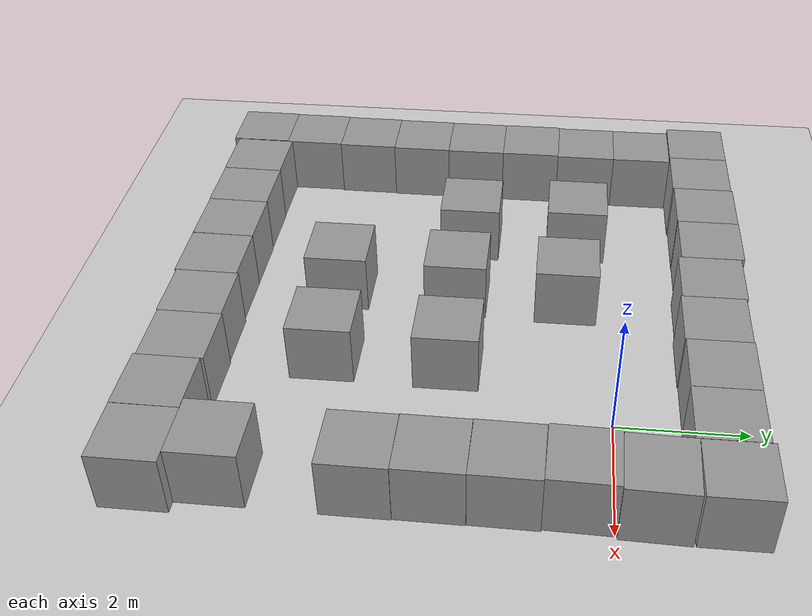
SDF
<sdf version="1.6">
 <world name="default">
  <light name="sun" type="directional">
   <pose>0 0 10 0 -0 0</pose>
   <diffuse>0.8 0.8 0.8 1</diffuse>
   <specular>0.1 0.1 0.1 1</specular>
   <attenuation>
    <range>1000</range>
    <constant>0.9</constant>
    <linear>0.01</linear>
    <quadratic>0.001</quadratic>
   </attenuation>
   <direction>-0.5 0.5 -1</direction>
  </light>
  <model name="ground_plane">
   <static>1</static>
   <link name="link">
    <collision name="collision">
     <geometry><plane><normal>0 0 1</normal><size>100 100</size></plane></geometry>
     <surface><friction><ode><mu>100</mu><mu2>50</mu2></ode></friction></surface>
    </collision>
    <visual name="visual">
     <cast_shadows>0</cast_shadows>
     <geometry><plane><normal>0 0 1</normal><size>100 100</size></plane></geometry>
     <material>
      <script><uri>file://media/materials/scripts/gazebo.material</uri><name>Gazebo/Grey</name></script>
     </material>
    </visual>
   </link>
  </model>
  <gravity>0 0 -9.8</gravity>
  <magnetic_field>6e-06 2.3e-05 -4.2e-05</magnetic_field>
  <atmosphere type="adiabatic"/>
  <physics name="default_physics" default="0" type="ode">
   <max_step_size>0.001</max_step_size>
   <real_time_factor>1</real_time_factor>
   <real_time_update_rate>1000</real_time_update_rate>
  </physics>
  <scene><ambient>0.4 0.4 0.4 1</ambient><background>0.7 0.7 0.7 1</background><shadows>1</shadows></scene>
  <spherical_coordinates>
   <surface_model>EARTH_WGS84</surface_model>
   <latitude_deg>0</latitude_deg>
   <longitude_deg>0</longitude_deg>
   <elevation>0</elevation>
   <heading_deg>0</heading_deg>
  </spherical_coordinates>
  <model name="unit_box_0_10">
   <pose>-0.421887 1.49598 0.5 0 -0 0.000849</pose>
   <link name="link">
    <inertial>
     <mass>1</mass>
     <inertia>
      <ixx>0.166667</ixx>
      <ixy>0</ixy>
      <ixz>0</ixz>
      <iyy>0.166667</iyy>
      <iyz>0</iyz>
      <izz>0.166667</izz>
     </inertia>
    </inertial>
    <collision name="collision"><geometry><box><size>1 1 1</size></box></geometry></collision>
    <visual name="visual">
     <geometry><box><size>1 1 1</size></box></geometry>
     <material>
      <script><name>Gazebo/Grey</name><uri>file://media/materials/scripts/gazebo.material</uri></script>
     </material>
    </visual>
   </link>
  </model>
  <model name="unit_box_0_11">
   <pose>-1.42188 1.48094 0.499995 0 1e-05 0.000861</pose>
   <link name="link">
    <inertial>
     <mass>1</mass>
     <inertia>
      <ixx>0.166667</ixx>
      <ixy>0</ixy>
      <ixz>0</ixz>
      <iyy>0.166667</iyy>
      <iyz>0</iyz>
      <izz>0.166667</izz>
     </inertia>
    </inertial>
    <collision name="collision"><geometry><box><size>1 1 1</size></box></geometry></collision>
    <visual name="visual">
     <geometry><box><size>1 1 1</size></box></geometry>
     <material>
      <script><name>Gazebo/Grey</name><uri>file://media/materials/scripts/gazebo.material</uri></script>
     </material>
    </visual>
   </link>
  </model>
  <model name="unit_box_0_12">
   <pose>0.578482 1.49486 0.499995 0 1e-05 0.000904</pose>
   <link name="link">
    <inertial>
     <mass>1</mass>
     <inertia>
      <ixx>0.166667</ixx>
      <ixy>0</ixy>
      <ixz>0</ixz>
      <iyy>0.166667</iyy>
      <iyz>0</iyz>
      <izz>0.166667</izz>
     </inertia>
    </inertial>
    <collision name="collision"><geometry><box><size>1 1 1</size></box></geometry></collision>
    <visual name="visual">
     <geometry><box><size>1 1 1</size></box></geometry>
     <material>
      <script><name>Gazebo/Grey</name><uri>file://media/materials/scripts/gazebo.material</uri></script>
     </material>
    </visual>
   </link>
  </model>
  <model name="unit_box_0_13">
   <pose>1.58058 1.55397 0.499995 0 1e-05 7.7e-05</pose>
   <link name="link">
    <inertial>
     <mass>1</mass>
     <inertia>
      <ixx>0.166667</ixx>
      <ixy>0</ixy>
      <ixz>0</ixz>
      <iyy>0.166667</iyy>
      <iyz>0</iyz>
      <izz>0.166667</izz>
     </inertia>
    </inertial>
    <collision name="collision"><geometry><box><size>1 1 1</size></box></geometry></collision>
    <visual name="visual">
     <geometry><box><size>1 1 1</size></box></geometry>
     <material>
      <script><name>Gazebo/Grey</name><uri>file://media/materials/scripts/gazebo.material</uri></script>
     </material>
    </visual>
   </link>
  </model>
  <model name="unit_box_0_14">
   <pose>1.56771 0.539841 0.499995 0 -1e-05 -0.028566</pose>
   <link name="link">
    <inertial>
     <mass>1</mass>
     <inertia>
      <ixx>0.166667</ixx>
      <ixy>0</ixy>
      <ixz>0</ixz>
      <iyy>0.166667</iyy>
      <iyz>0</iyz>
      <izz>0.166667</izz>
     </inertia>
    </inertial>
    <collision name="collision"><geometry><box><size>1 1 1</size></box></geometry></collision>
    <visual name="visual">
     <geometry><box><size>1 1 1</size></box></geometry>
     <material>
      <script><name>Gazebo/Grey</name><uri>file://media/materials/scripts/gazebo.material</uri></script>
     </material>
    </visual>
   </link>
  </model>
  <model name="unit_box_0_15">
   <pose>1.5008 -0.460723 0.5 0 0 -0.024448</pose>
   <link name="link">
    <inertial>
     <mass>1</mass>
     <inertia>
      <ixx>0.166667</ixx>
      <ixy>0</ixy>
      <ixz>0</ixz>
      <iyy>0.166667</iyy>
      <iyz>0</iyz>
      <izz>0.166667</izz>
     </inertia>
    </inertial>
    <collision name="collision"><geometry><box><size>1 1 1</size></box></geometry></collision>
    <visual name="visual">
     <geometry><box><size>1 1 1</size></box></geometry>
     <material>
      <script><name>Gazebo/Grey</name><uri>file://media/materials/scripts/gazebo.material</uri></script>
     </material>
    </visual>
   </link>
  </model>
  <model name="unit_box_0_16">
   <pose>1.50783 -1.46626 0.5 0 0 -0.013703</pose>
   <link name="link">
    <inertial>
     <mass>1</mass>
     <inertia>
      <ixx>0.166667</ixx>
      <ixy>0</ixy>
      <ixz>0</ixz>
      <iyy>0.166667</iyy>
      <iyz>0</iyz>
      <izz>0.166667</izz>
     </inertia>
    </inertial>
    <collision name="collision"><geometry><box><size>1 1 1</size></box></geometry></collision>
    <visual name="visual">
     <geometry><box><size>1 1 1</size></box></geometry>
     <material>
      <script><name>Gazebo/Grey</name><uri>file://media/materials/scripts/gazebo.material</uri></script>
     </material>
    </visual>
   </link>
  </model>
  <model name="unit_box_0_17">
   <pose>1.50395 -2.46873 0.5 0 0 -0.008767</pose>
   <link name="link">
    <inertial>
     <mass>1</mass>
     <inertia>
      <ixx>0.166667</ixx>
      <ixy>0</ixy>
      <ixz>0</ixz>
      <iyy>0.166667</iyy>
      <iyz>0</iyz>
      <izz>0.166667</izz>
     </inertia>
    </inertial>
    <collision name="collision"><geometry><box><size>1 1 1</size></box></geometry></collision>
    <visual name="visual">
     <geometry><box><size>1 1 1</size></box></geometry>
     <material>
      <script><name>Gazebo/Grey</name><uri>file://media/materials/scripts/gazebo.material</uri></script>
     </material>
    </visual>
   </link>
  </model>
  <model name="unit_box_0_18">
   <pose>1.50599 -3.46984 0.499995 -1e-05 0 -0.006664</pose>
   <link name="link">
    <inertial>
     <mass>1</mass>
     <inertia>
      <ixx>0.166667</ixx>
      <ixy>0</ixy>
      <ixz>0</ixz>
      <iyy>0.166667</iyy>
      <iyz>0</iyz>
      <izz>0.166667</izz>
     </inertia>
    </inertial>
    <collision name="collision"><geometry><box><size>1 1 1</size></box></geometry></collision>
    <visual name="visual">
     <geometry><box><size>1 1 1</size></box></geometry>
     <material>
      <script><name>Gazebo/Grey</name><uri>file://media/materials/scripts/gazebo.material</uri></script>
     </material>
    </visual>
   </link>
  </model>
  <model name="unit_box_0_30">
   <pose>1.48426 -5.46986 0.5 0 0 -0.006967</pose>
   <link name="link">
    <inertial>
     <mass>1</mass>
     <inertia>
      <ixx>0.166667</ixx>
      <ixy>0</ixy>
      <ixz>0</ixz>
      <iyy>0.166667</iyy>
      <iyz>0</iyz>
      <izz>0.166667</izz>
     </inertia>
    </inertial>
    <collision name="collision"><geometry><box><size>1 1 1</size></box></geometry></collision>
    <visual name="visual">
     <geometry><box><size>1 1 1</size></box></geometry>
     <material>
      <script><name>Gazebo/Grey</name><uri>file://media/materials/scripts/gazebo.material</uri></script>
     </material>
    </visual>
   </link>
  </model>
  <model name="unit_box_0_31">
   <pose>1.66083 -6.47112 0.499995 -0 -1e-05 -0.006969</pose>
   <link name="link">
    <inertial>
     <mass>1</mass>
     <inertia>
      <ixx>0.166667</ixx>
      <ixy>0</ixy>
      <ixz>0</ixz>
      <iyy>0.166667</iyy>
      <iyz>0</iyz>
      <izz>0.166667</izz>
     </inertia>
    </inertial>
    <collision name="collision"><geometry><box><size>1 1 1</size></box></geometry></collision>
    <visual name="visual">
     <geometry><box><size>1 1 1</size></box></geometry>
     <material>
      <script><name>Gazebo/Grey</name><uri>file://media/materials/scripts/gazebo.material</uri></script>
     </material>
    </visual>
   </link>
  </model>
  <model name="unit_box_0_32">
   <pose>0.658483 -6.46631 0.5 0 0 -0.01169</pose>
   <link name="link">
    <inertial>
     <mass>1</mass>
     <inertia>
      <ixx>0.166667</ixx>
      <ixy>0</ixy>
      <ixz>0</ixz>
      <iyy>0.166667</iyy>
      <iyz>0</iyz>
      <izz>0.166667</izz>
     </inertia>
    </inertial>
    <collision name="collision"><geometry><box><size>1 1 1</size></box></geometry></collision>
    <visual name="visual">
     <geometry><box><size>1 1 1</size></box></geometry>
     <material>
      <script><name>Gazebo/Grey</name><uri>file://media/materials/scripts/gazebo.material</uri></script>
     </material>
    </visual>
   </link>
  </model>
  <model name="unit_box_0_33">
   <pose>-0.340964 -6.41077 0.499995 1e-05 0 -0.011749</pose>
   <link name="link">
    <inertial>
     <mass>1</mass>
     <inertia>
      <ixx>0.166667</ixx>
      <ixy>0</ixy>
      <ixz>0</ixz>
      <iyy>0.166667</iyy>
      <iyz>0</iyz>
      <izz>0.166667</izz>
     </inertia>
    </inertial>
    <collision name="collision"><geometry><box><size>1 1 1</size></box></geometry></collision>
    <visual name="visual">
     <geometry><box><size>1 1 1</size></box></geometry>
     <material>
      <script><name>Gazebo/Grey</name><uri>file://media/materials/scripts/gazebo.material</uri></script>
     </material>
    </visual>
   </link>
  </model>
  <model name="unit_box_0_34">
   <pose>-1.34112 -6.41668 0.5 0 0 -0.011778</pose>
   <link name="link">
    <inertial>
     <mass>1</mass>
     <inertia>
      <ixx>0.166667</ixx>
      <ixy>0</ixy>
      <ixz>0</ixz>
      <iyy>0.166667</iyy>
      <iyz>0</iyz>
      <izz>0.166667</izz>
     </inertia>
    </inertial>
    <collision name="collision"><geometry><box><size>1 1 1</size></box></geometry></collision>
    <visual name="visual">
     <geometry><box><size>1 1 1</size></box></geometry>
     <material>
      <script><name>Gazebo/Grey</name><uri>file://media/materials/scripts/gazebo.material</uri></script>
     </material>
    </visual>
   </link>
  </model>
  <model name="unit_box_0_35">
   <pose>-2.34187 -6.43251 0.499995 1e-05 0 -0.012736</pose>
   <link name="link">
    <inertial>
     <mass>1</mass>
     <inertia>
      <ixx>0.166667</ixx>
      <ixy>0</ixy>
      <ixz>0</ixz>
      <iyy>0.166667</iyy>
      <iyz>0</iyz>
      <izz>0.166667</izz>
     </inertia>
    </inertial>
    <collision name="collision"><geometry><box><size>1 1 1</size></box></geometry></collision>
    <visual name="visual">
     <geometry><box><size>1 1 1</size></box></geometry>
     <material>
      <script><name>Gazebo/Grey</name><uri>file://media/materials/scripts/gazebo.material</uri></script>
     </material>
    </visual>
   </link>
  </model>
  <model name="unit_box_0_36">
   <pose>-3.3432 -6.42124 0.5 0 0 -0.015513</pose>
   <link name="link">
    <inertial>
     <mass>1</mass>
     <inertia>
      <ixx>0.166667</ixx>
      <ixy>0</ixy>
      <ixz>0</ixz>
      <iyy>0.166667</iyy>
      <iyz>0</iyz>
      <izz>0.166667</izz>
     </inertia>
    </inertial>
    <collision name="collision"><geometry><box><size>1 1 1</size></box></geometry></collision>
    <visual name="visual">
     <geometry><box><size>1 1 1</size></box></geometry>
     <material>
      <script><name>Gazebo/Grey</name><uri>file://media/materials/scripts/gazebo.material</uri></script>
     </material>
    </visual>
   </link>
  </model>
  <model name="unit_box_0_38">
   <pose>-4.34325 -6.41689 0.5 0 0 -0.015518</pose>
   <link name="link">
    <inertial>
     <mass>1</mass>
     <inertia>
      <ixx>0.166667</ixx>
      <ixy>0</ixy>
      <ixz>0</ixz>
      <iyy>0.166667</iyy>
      <iyz>0</iyz>
      <izz>0.166667</izz>
     </inertia>
    </inertial>
    <collision name="collision"><geometry><box><size>1 1 1</size></box></geometry></collision>
    <visual name="visual">
     <geometry><box><size>1 1 1</size></box></geometry>
     <material>
      <script><name>Gazebo/Grey</name><uri>file://media/materials/scripts/gazebo.material</uri></script>
     </material>
    </visual>
   </link>
  </model>
  <model name="unit_box_0_39">
   <pose>-5.34328 -6.41024 0.499995 0 1e-05 -0.015526</pose>
   <link name="link">
    <inertial>
     <mass>1</mass>
     <inertia>
      <ixx>0.166667</ixx>
      <ixy>0</ixy>
      <ixz>0</ixz>
      <iyy>0.166667</iyy>
      <iyz>0</iyz>
      <izz>0.166667</izz>
     </inertia>
    </inertial>
    <collision name="collision"><geometry><box><size>1 1 1</size></box></geometry></collision>
    <visual name="visual">
     <geometry><box><size>1 1 1</size></box></geometry>
     <material>
      <script><name>Gazebo/Grey</name><uri>file://media/materials/scripts/gazebo.material</uri></script>
     </material>
    </visual>
   </link>
  </model>
  <model name="unit_box_0_40">
   <pose>-6.35595 -6.48989 0.499995 -1e-05 -0 -0.002435</pose>
   <link name="link">
    <inertial>
     <mass>1</mass>
     <inertia>
      <ixx>0.166667</ixx>
      <ixy>0</ixy>
      <ixz>0</ixz>
      <iyy>0.166667</iyy>
      <iyz>0</iyz>
      <izz>0.166667</izz>
     </inertia>
    </inertial>
    <collision name="collision"><geometry><box><size>1 1 1</size></box></geometry></collision>
    <visual name="visual">
     <geometry><box><size>1 1 1</size></box></geometry>
     <material>
      <script><name>Gazebo/Grey</name><uri>file://media/materials/scripts/gazebo.material</uri></script>
     </material>
    </visual>
   </link>
  </model>
  <model name="unit_box_0_41">
   <pose>-6.33563 -5.48992 0.5 0 0 -0.002417</pose>
   <link name="link">
    <inertial>
     <mass>1</mass>
     <inertia>
      <ixx>0.166667</ixx>
      <ixy>0</ixy>
      <ixz>0</ixz>
      <iyy>0.166667</iyy>
      <iyz>0</iyz>
      <izz>0.166667</izz>
     </inertia>
    </inertial>
    <collision name="collision"><geometry><box><size>1 1 1</size></box></geometry></collision>
    <visual name="visual">
     <geometry><box><size>1 1 1</size></box></geometry>
     <material>
      <script><name>Gazebo/Grey</name><uri>file://media/materials/scripts/gazebo.material</uri></script>
     </material>
    </visual>
   </link>
  </model>
  <model name="unit_box_0_42">
   <pose>-6.31365 -4.48967 0.499995 0 1e-05 -0.001812</pose>
   <link name="link">
    <inertial>
     <mass>1</mass>
     <inertia>
      <ixx>0.166667</ixx>
      <ixy>0</ixy>
      <ixz>0</ixz>
      <iyy>0.166667</iyy>
      <iyz>0</iyz>
      <izz>0.166667</izz>
     </inertia>
    </inertial>
    <collision name="collision"><geometry><box><size>1 1 1</size></box></geometry></collision>
    <visual name="visual">
     <geometry><box><size>1 1 1</size></box></geometry>
     <material>
      <script><name>Gazebo/Grey</name><uri>file://media/materials/scripts/gazebo.material</uri></script>
     </material>
    </visual>
   </link>
  </model>
  <model name="unit_box_0_43">
   <pose>-6.29683 -3.48884 0.499995 0 1e-05 -0.000123</pose>
   <link name="link">
    <inertial>
     <mass>1</mass>
     <inertia>
      <ixx>0.166667</ixx>
      <ixy>0</ixy>
      <ixz>0</ixz>
      <iyy>0.166667</iyy>
      <iyz>0</iyz>
      <izz>0.166667</izz>
     </inertia>
    </inertial>
    <collision name="collision"><geometry><box><size>1 1 1</size></box></geometry></collision>
    <visual name="visual">
     <geometry><box><size>1 1 1</size></box></geometry>
     <material>
      <script><name>Gazebo/Grey</name><uri>file://media/materials/scripts/gazebo.material</uri></script>
     </material>
    </visual>
   </link>
  </model>
  <model name="unit_box_0_44">
   <pose>-6.28773 -2.48852 0.499995 -1e-05 0 0.000517</pose>
   <link name="link">
    <inertial>
     <mass>1</mass>
     <inertia>
      <ixx>0.166667</ixx>
      <ixy>0</ixy>
      <ixz>0</ixz>
      <iyy>0.166667</iyy>
      <iyz>0</iyz>
      <izz>0.166667</izz>
     </inertia>
    </inertial>
    <collision name="collision"><geometry><box><size>1 1 1</size></box></geometry></collision>
    <visual name="visual">
     <geometry><box><size>1 1 1</size></box></geometry>
     <material>
      <script><name>Gazebo/Grey</name><uri>file://media/materials/scripts/gazebo.material</uri></script>
     </material>
    </visual>
   </link>
  </model>
  <model name="unit_box_0_45">
   <pose>-6.29357 -1.48838 0.499995 -1e-05 -0 0.000798</pose>
   <link name="link">
    <inertial>
     <mass>1</mass>
     <inertia>
      <ixx>0.166667</ixx>
      <ixy>0</ixy>
      <ixz>0</ixz>
      <iyy>0.166667</iyy>
      <iyz>0</iyz>
      <izz>0.166667</izz>
     </inertia>
    </inertial>
    <collision name="collision"><geometry><box><size>1 1 1</size></box></geometry></collision>
    <visual name="visual">
     <geometry><box><size>1 1 1</size></box></geometry>
     <material>
      <script><name>Gazebo/Grey</name><uri>file://media/materials/scripts/gazebo.material</uri></script>
     </material>
    </visual>
   </link>
  </model>
  <model name="unit_box_0_46">
   <pose>-6.26656 -0.488267 0.499995 1e-05 0 0.000993</pose>
   <link name="link">
    <inertial>
     <mass>1</mass>
     <inertia>
      <ixx>0.166667</ixx>
      <ixy>0</ixy>
      <ixz>0</ixz>
      <iyy>0.166667</iyy>
      <iyz>0</iyz>
      <izz>0.166667</izz>
     </inertia>
    </inertial>
    <collision name="collision"><geometry><box><size>1 1 1</size></box></geometry></collision>
    <visual name="visual">
     <geometry><box><size>1 1 1</size></box></geometry>
     <material>
      <script><name>Gazebo/Grey</name><uri>file://media/materials/scripts/gazebo.material</uri></script>
     </material>
    </visual>
   </link>
  </model>
  <model name="unit_box_0_47">
   <pose>-6.26408 0.511767 0.499995 0 1e-05 0.001035</pose>
   <link name="link">
    <inertial>
     <mass>1</mass>
     <inertia>
      <ixx>0.166667</ixx>
      <ixy>0</ixy>
      <ixz>0</ixz>
      <iyy>0.166667</iyy>
      <iyz>0</iyz>
      <izz>0.166667</izz>
     </inertia>
    </inertial>
    <collision name="collision"><geometry><box><size>1 1 1</size></box></geometry></collision>
    <visual name="visual">
     <geometry><box><size>1 1 1</size></box></geometry>
     <material>
      <script><name>Gazebo/Grey</name><uri>file://media/materials/scripts/gazebo.material</uri></script>
     </material>
    </visual>
   </link>
  </model>
  <model name="unit_box_0_50">
   <pose>-6.42247 1.5235 0.5 0 -0 0.00122</pose>
   <link name="link">
    <inertial>
     <mass>1</mass>
     <inertia>
      <ixx>0.166667</ixx>
      <ixy>0</ixy>
      <ixz>0</ixz>
      <iyy>0.166667</iyy>
      <iyz>0</iyz>
      <izz>0.166667</izz>
     </inertia>
    </inertial>
    <collision name="collision"><geometry><box><size>1 1 1</size></box></geometry></collision>
    <visual name="visual">
     <geometry><box><size>1 1 1</size></box></geometry>
     <material>
      <script><name>Gazebo/Grey</name><uri>file://media/materials/scripts/gazebo.material</uri></script>
     </material>
    </visual>
   </link>
  </model>
  <model name="unit_box_0_51">
   <pose>-5.42247 1.52677 0.5 0 -0 0.001217</pose>
   <link name="link">
    <inertial>
     <mass>1</mass>
     <inertia>
      <ixx>0.166667</ixx>
      <ixy>0</ixy>
      <ixz>0</ixz>
      <iyy>0.166667</iyy>
      <iyz>0</iyz>
      <izz>0.166667</izz>
     </inertia>
    </inertial>
    <collision name="collision"><geometry><box><size>1 1 1</size></box></geometry></collision>
    <visual name="visual">
     <geometry><box><size>1 1 1</size></box></geometry>
     <material>
      <script><name>Gazebo/Grey</name><uri>file://media/materials/scripts/gazebo.material</uri></script>
     </material>
    </visual>
   </link>
  </model>
  <model name="unit_box_0_52">
   <pose>-4.42241 1.54835 0.499995 1e-05 -0 0.001066</pose>
   <link name="link">
    <inertial>
     <mass>1</mass>
     <inertia>
      <ixx>0.166667</ixx>
      <ixy>0</ixy>
      <ixz>0</ixz>
      <iyy>0.166667</iyy>
      <iyz>0</iyz>
      <izz>0.166667</izz>
     </inertia>
    </inertial>
    <collision name="collision"><geometry><box><size>1 1 1</size></box></geometry></collision>
    <visual name="visual">
     <geometry><box><size>1 1 1</size></box></geometry>
     <material>
      <script><name>Gazebo/Grey</name><uri>file://media/materials/scripts/gazebo.material</uri></script>
     </material>
    </visual>
   </link>
  </model>
  <model name="unit_box_0_53">
   <pose>-3.42238 1.55507 0.5 0 -0 0.001023</pose>
   <link name="link">
    <inertial>
     <mass>1</mass>
     <inertia>
      <ixx>0.166667</ixx>
      <ixy>0</ixy>
      <ixz>0</ixz>
      <iyy>0.166667</iyy>
      <iyz>0</iyz>
      <izz>0.166667</izz>
     </inertia>
    </inertial>
    <collision name="collision"><geometry><box><size>1 1 1</size></box></geometry></collision>
    <visual name="visual">
     <geometry><box><size>1 1 1</size></box></geometry>
     <material>
      <script><name>Gazebo/Grey</name><uri>file://media/materials/scripts/gazebo.material</uri></script>
     </material>
    </visual>
   </link>
  </model>
  <model name="unit_box_0_54">
   <pose>-2.42204 1.50422 0.499995 0 1e-05 0.000743</pose>
   <link name="link">
    <inertial>
     <mass>1</mass>
     <inertia>
      <ixx>0.166667</ixx>
      <ixy>0</ixy>
      <ixz>0</ixz>
      <iyy>0.166667</iyy>
      <iyz>0</iyz>
      <izz>0.166667</izz>
     </inertia>
    </inertial>
    <collision name="collision"><geometry><box><size>1 1 1</size></box></geometry></collision>
    <visual name="visual">
     <geometry><box><size>1 1 1</size></box></geometry>
     <material>
      <script><name>Gazebo/Grey</name><uri>file://media/materials/scripts/gazebo.material</uri></script>
     </material>
    </visual>
   </link>
  </model>
  <model name="unit_box_0_57">
   <pose>-1.09407 -4.42309 0.499995 0 1e-05 0</pose>
   <link name="link">
    <inertial>
     <mass>1</mass>
     <inertia>
      <ixx>0.166667</ixx>
      <ixy>0</ixy>
      <ixz>0</ixz>
      <iyy>0.166667</iyy>
      <iyz>0</iyz>
      <izz>0.166667</izz>
     </inertia>
    </inertial>
    <collision name="collision"><geometry><box><size>1 1 1</size></box></geometry></collision>
    <visual name="visual">
     <geometry><box><size>1 1 1</size></box></geometry>
     <material>
      <script><name>Gazebo/Grey</name><uri>file://media/materials/scripts/gazebo.material</uri></script>
     </material>
    </visual>
   </link>
  </model>
  <model name="unit_box_0_63">
   <pose>-2.82762 -4.47187 0.499995 1e-05 -0 0</pose>
   <link name="link">
    <inertial>
     <mass>1</mass>
     <inertia>
      <ixx>0.166667</ixx>
      <ixy>0</ixy>
      <ixz>0</ixz>
      <iyy>0.166667</iyy>
      <iyz>0</iyz>
      <izz>0.166667</izz>
     </inertia>
    </inertial>
    <collision name="collision"><geometry><box><size>1 1 1</size></box></geometry></collision>
    <visual name="visual">
     <geometry><box><size>1 1 1</size></box></geometry>
     <material>
      <script><name>Gazebo/Grey</name><uri>file://media/materials/scripts/gazebo.material</uri></script>
     </material>
    </visual>
   </link>
  </model>
  <model name="unit_box_0_65">
   <pose>-1.06283 -2.51627 0.499995 0 1e-05 0</pose>
   <link name="link">
    <inertial>
     <mass>1</mass>
     <inertia>
      <ixx>0.166667</ixx>
      <ixy>0</ixy>
      <ixz>0</ixz>
      <iyy>0.166667</iyy>
      <iyz>0</iyz>
      <izz>0.166667</izz>
     </inertia>
    </inertial>
    <collision name="collision"><geometry><box><size>1 1 1</size></box></geometry></collision>
    <visual name="visual">
     <geometry><box><size>1 1 1</size></box></geometry>
     <material>
      <script><name>Gazebo/Grey</name><uri>file://media/materials/scripts/gazebo.material</uri></script>
     </material>
    </visual>
   </link>
  </model>
  <model name="unit_box_0_67">
   <pose>-2.79242 -2.53791 0.499995 0 1e-05 0</pose>
   <link name="link">
    <inertial>
     <mass>1</mass>
     <inertia>
      <ixx>0.166667</ixx>
      <ixy>0</ixy>
      <ixz>0</ixz>
      <iyy>0.166667</iyy>
      <iyz>0</iyz>
      <izz>0.166667</izz>
     </inertia>
    </inertial>
    <collision name="collision"><geometry><box><size>1 1 1</size></box></geometry></collision>
    <visual name="visual">
     <geometry><box><size>1 1 1</size></box></geometry>
     <material>
      <script><name>Gazebo/Grey</name><uri>file://media/materials/scripts/gazebo.material</uri></script>
     </material>
    </visual>
   </link>
  </model>
  <model name="unit_box_0_68">
   <pose>-2.76287 -0.746163 0.499995 1e-05 -0 0</pose>
   <link name="link">
    <inertial>
     <mass>1</mass>
     <inertia>
      <ixx>0.166667</ixx>
      <ixy>0</ixy>
      <ixz>0</ixz>
      <iyy>0.166667</iyy>
      <iyz>0</iyz>
      <izz>0.166667</izz>
     </inertia>
    </inertial>
    <collision name="collision"><geometry><box><size>1 1 1</size></box></geometry></collision>
    <visual name="visual">
     <geometry><box><size>1 1 1</size></box></geometry>
     <material>
      <script><name>Gazebo/Grey</name><uri>file://media/materials/scripts/gazebo.material</uri></script>
     </material>
    </visual>
   </link>
  </model>
  <model name="unit_box_0_69">
   <pose>-4.37852 -2.43494 0.499995 0 1e-05 0</pose>
   <link name="link">
    <inertial>
     <mass>1</mass>
     <inertia>
      <ixx>0.166667</ixx>
      <ixy>0</ixy>
      <ixz>0</ixz>
      <iyy>0.166667</iyy>
      <iyz>0</iyz>
      <izz>0.166667</izz>
     </inertia>
    </inertial>
    <collision name="collision"><geometry><box><size>1 1 1</size></box></geometry></collision>
    <visual name="visual">
     <geometry><box><size>1 1 1</size></box></geometry>
     <material>
      <script><name>Gazebo/Grey</name><uri>file://media/materials/scripts/gazebo.material</uri></script>
     </material>
    </visual>
   </link>
  </model>
  <model name="unit_box_0_70">
   <pose>-4.46647 -0.613827 0.499995 -1e-05 0 0</pose>
   <link name="link">
    <inertial>
     <mass>1</mass>
     <inertia>
      <ixx>0.166667</ixx>
      <ixy>0</ixy>
      <ixz>0</ixz>
      <iyy>0.166667</iyy>
      <iyz>0</iyz>
      <izz>0.166667</izz>
     </inertia>
    </inertial>
    <collision name="collision"><geometry><box><size>1 1 1</size></box></geometry></collision>
    <visual name="visual">
     <geometry><box><size>1 1 1</size></box></geometry>
     <material>
      <script><name>Gazebo/Grey</name><uri>file://media/materials/scripts/gazebo.material</uri></script>
     </material>
    </visual>
   </link>
  </model>
 </world>
</sdf>
